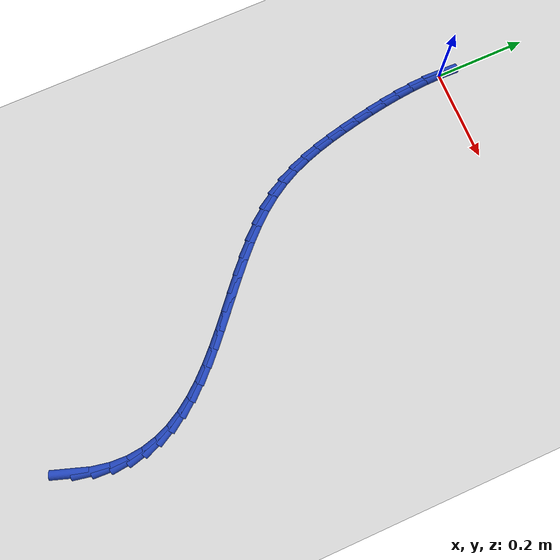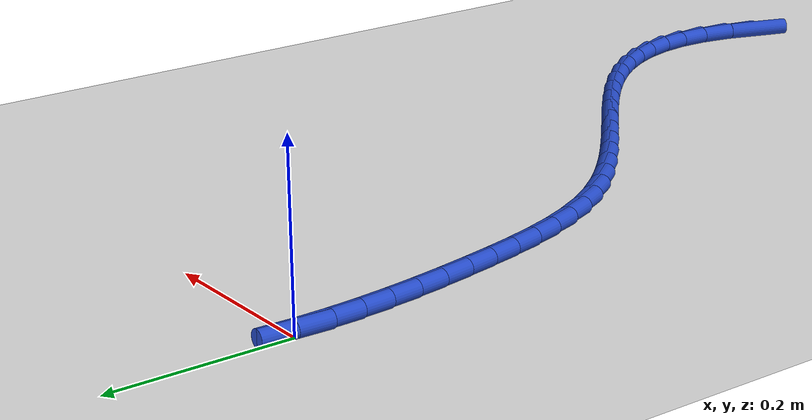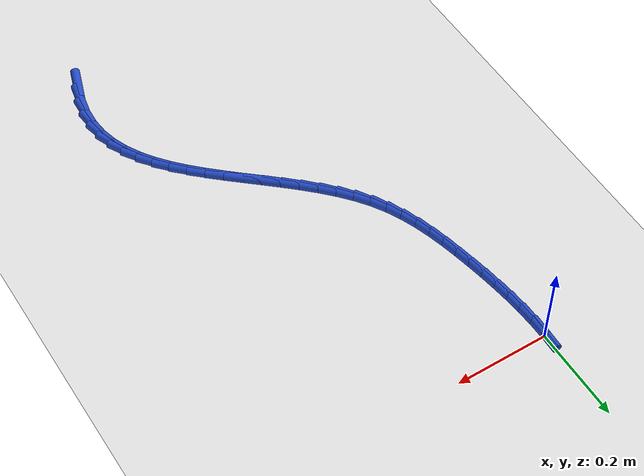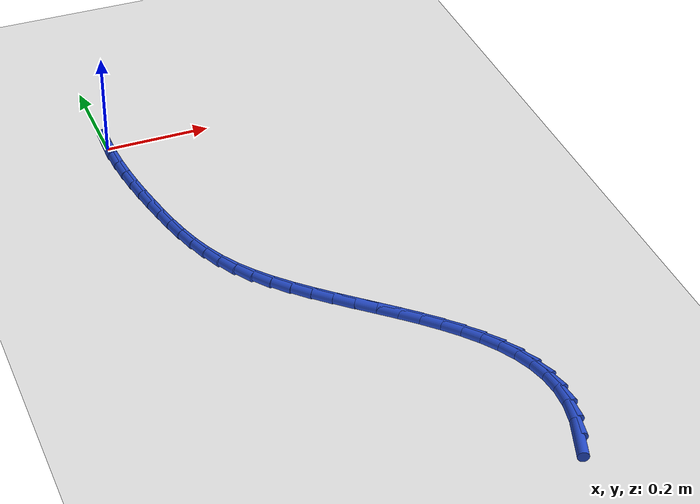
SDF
<sdf version="1.6">
 <world name="default">
  <model name="ground_plane">
   <static>1</static>
   <link name="link">
    <collision name="collision">
     <geometry><plane><normal>0 0 1</normal><size>100 100</size></plane></geometry>
     <surface><friction><ode><mu>100</mu><mu2>50</mu2></ode></friction></surface>
    </collision>
    <visual name="visual">
     <cast_shadows>0</cast_shadows>
     <geometry><plane><normal>0 0 1</normal><size>100 100</size></plane></geometry>
     <material>
      <script><uri>file://media/materials/scripts/gazebo.material</uri><name>Gazebo/WhiteGlow</name></script>
     </material>
    </visual>
   </link>
  </model>
  <model name="line">
   <link name="link_0">
    <pose>8.673617379884035e-19 -6.938893903907228e-18 0.01 0 1.57 1.5414224761235265</pose>
    <collision name="collision">
     <geometry><cylinder><radius>0.01</radius><length>0.08</length></cylinder></geometry>
    </collision>
    <visual name="visual">
     <material>
      <script><name>Gazebo/Blue</name><uri>file://media/materials/scripts/gazebo.material</uri></script>
     </material>
     <geometry><cylinder><radius>0.01</radius><length>0.08</length></cylinder></geometry>
    </visual>
   </link>
   <link name="link_247">
    <pose>0.46742543578225876 -1.0438539088247634 0.01 0 1.57 1.246306538755147</pose>
    <collision name="collision">
     <geometry><cylinder><radius>0.01</radius><length>0.08</length></cylinder></geometry>
    </collision>
    <visual name="visual">
     <material>
      <script><name>Gazebo/Blue</name><uri>file://media/materials/scripts/gazebo.material</uri></script>
     </material>
     <geometry><cylinder><radius>0.01</radius><length>0.08</length></cylinder></geometry>
    </visual>
   </link>
   <link name="link_248">
    <pose>0.4812877516562395 -1.0026435883556466 0.01 0 1.57 1.3754638689260492</pose>
    <collision name="collision">
     <geometry><cylinder><radius>0.01</radius><length>0.08</length></cylinder></geometry>
    </collision>
    <visual name="visual">
     <material>
      <script><name>Gazebo/Blue</name><uri>file://media/materials/scripts/gazebo.material</uri></script>
     </material>
     <geometry><cylinder><radius>0.01</radius><length>0.08</length></cylinder></geometry>
    </visual>
   </link>
   <link name="link_249">
    <pose>0.48901484252835237 -0.9635893270045884 0.01 0 1.57 1.521160636262284</pose>
    <collision name="collision">
     <geometry><cylinder><radius>0.01</radius><length>0.08</length></cylinder></geometry>
    </collision>
    <visual name="visual">
     <material>
      <script><name>Gazebo/Blue</name><uri>file://media/materials/scripts/gazebo.material</uri></script>
     </material>
     <geometry><cylinder><radius>0.01</radius><length>0.08</length></cylinder></geometry>
    </visual>
   </link>
   <link name="link_250">
    <pose>0.49084850989254913 -0.9266771529762206 0.01 0 1.57 -1.4693393847324987</pose>
    <collision name="collision">
     <geometry><cylinder><radius>0.01</radius><length>0.08</length></cylinder></geometry>
    </collision>
    <visual name="visual">
     <material>
      <script><name>Gazebo/Blue</name><uri>file://media/materials/scripts/gazebo.material</uri></script>
     </material>
     <geometry><cylinder><radius>0.01</radius><length>0.08</length></cylinder></geometry>
    </visual>
   </link>
   <link name="link_251">
    <pose>0.48728944913462763 -0.8917180801549183 0.01 0 1.57 -1.3215026564036403</pose>
    <collision name="collision">
     <geometry><cylinder><radius>0.01</radius><length>0.08</length></cylinder></geometry>
    </collision>
    <visual name="visual">
     <material>
      <script><name>Gazebo/Blue</name><uri>file://media/materials/scripts/gazebo.material</uri></script>
     </material>
     <geometry><cylinder><radius>0.01</radius><length>0.08</length></cylinder></geometry>
    </visual>
   </link>
   <link name="link_252">
    <pose>0.4788383556403855 -0.8585231224250552 0.01 0 1.57 -1.184998479204705</pose>
    <collision name="collision">
     <geometry><cylinder><radius>0.01</radius><length>0.08</length></cylinder></geometry>
    </collision>
    <visual name="visual">
     <material>
      <script><name>Gazebo/Blue</name><uri>file://media/materials/scripts/gazebo.material</uri></script>
     </material>
     <geometry><cylinder><radius>0.01</radius><length>0.08</length></cylinder></geometry>
    </visual>
   </link>
   <link name="link_253">
    <pose>0.4659959247956211 -0.826903293671009 0.01 0 1.57 -1.0653021624007954</pose>
    <collision name="collision">
     <geometry><cylinder><radius>0.01</radius><length>0.08</length></cylinder></geometry>
    </collision>
    <visual name="visual">
     <material>
      <script><name>Gazebo/Blue</name><uri>file://media/materials/scripts/gazebo.material</uri></script>
     </material>
     <geometry><cylinder><radius>0.01</radius><length>0.08</length></cylinder></geometry>
    </visual>
   </link>
   <link name="link_254">
    <pose>0.4492628519861321 -0.7966696077771533 0.01 0 1.57 -0.9647674197685904</pose>
    <collision name="collision">
     <geometry><cylinder><radius>0.01</radius><length>0.08</length></cylinder></geometry>
    </collision>
    <visual name="visual">
     <material>
      <script><name>Gazebo/Blue</name><uri>file://media/materials/scripts/gazebo.material</uri></script>
     </material>
     <geometry><cylinder><radius>0.01</radius><length>0.08</length></cylinder></geometry>
    </visual>
   </link>
   <link name="link_255">
    <pose>0.42913983259771626 -0.7676330786278633 0.01 0 1.57 -0.8833599655549254</pose>
    <collision name="collision">
     <geometry><cylinder><radius>0.01</radius><length>0.08</length></cylinder></geometry>
    </collision>
    <visual name="visual">
     <material>
      <script><name>Gazebo/Blue</name><uri>file://media/materials/scripts/gazebo.material</uri></script>
     </material>
     <geometry><cylinder><radius>0.01</radius><length>0.08</length></cylinder></geometry>
    </visual>
   </link>
   <link name="link_256">
    <pose>0.40612756201617134 -0.7396047201075139 0.01 0 1.57 -0.8197573333664852</pose>
    <collision name="collision">
     <geometry><cylinder><radius>0.01</radius><length>0.08</length></cylinder></geometry>
    </collision>
    <visual name="visual">
     <material>
      <script><name>Gazebo/Blue</name><uri>file://media/materials/scripts/gazebo.material</uri></script>
     </material>
     <geometry><cylinder><radius>0.01</radius><length>0.08</length></cylinder></geometry>
    </visual>
   </link>
   <link name="link_257">
    <pose>0.38072673562729537 -0.7123955461004802 0.01 0 1.57 -0.7722238374869395</pose>
    <collision name="collision">
     <geometry><cylinder><radius>0.01</radius><length>0.08</length></cylinder></geometry>
    </collision>
    <visual name="visual">
     <material>
      <script><name>Gazebo/Blue</name><uri>file://media/materials/scripts/gazebo.material</uri></script>
     </material>
     <geometry><cylinder><radius>0.01</radius><length>0.08</length></cylinder></geometry>
    </visual>
   </link>
   <link name="link_258">
    <pose>0.3534380488168862 -0.6858165704911372 0.01 0 1.57 -0.73912723410351</pose>
    <collision name="collision">
     <geometry><cylinder><radius>0.01</radius><length>0.08</length></cylinder></geometry>
    </collision>
    <visual name="visual">
     <material>
      <script><name>Gazebo/Blue</name><uri>file://media/materials/scripts/gazebo.material</uri></script>
     </material>
     <geometry><cylinder><radius>0.01</radius><length>0.08</length></cylinder></geometry>
    </visual>
   </link>
   <link name="link_259">
    <pose>0.3247621969707415 -0.6596788071638598 0.01 0 1.57 -0.7191844352297573</pose>
    <collision name="collision">
     <geometry><cylinder><radius>0.01</radius><length>0.08</length></cylinder></geometry>
    </collision>
    <visual name="visual">
     <material>
      <script><name>Gazebo/Blue</name><uri>file://media/materials/scripts/gazebo.material</uri></script>
     </material>
     <geometry><cylinder><radius>0.01</radius><length>0.08</length></cylinder></geometry>
    </visual>
   </link>
   <link name="link_260">
    <pose>0.29519987547465915 -0.6337932700030233 0.01 0 1.57 -0.7115543814936711</pose>
    <collision name="collision">
     <geometry><cylinder><radius>0.01</radius><length>0.08</length></cylinder></geometry>
    </collision>
    <visual name="visual">
     <material>
      <script><name>Gazebo/Blue</name><uri>file://media/materials/scripts/gazebo.material</uri></script>
     </material>
     <geometry><cylinder><radius>0.01</radius><length>0.08</length></cylinder></geometry>
    </visual>
   </link>
   <link name="link_261">
    <pose>0.2652517797144361 -0.6079709728930018 0.01 0 1.57 -0.7158610051906212</pose>
    <collision name="collision">
     <geometry><cylinder><radius>0.01</radius><length>0.08</length></cylinder></geometry>
    </collision>
    <visual name="visual">
     <material>
      <script><name>Gazebo/Blue</name><uri>file://media/materials/scripts/gazebo.material</uri></script>
     </material>
     <geometry><cylinder><radius>0.01</radius><length>0.08</length></cylinder></geometry>
    </visual>
   </link>
   <link name="link_262">
    <pose>0.23541860507587206 -0.582022929718172 0.01 0 1.57 -0.7321902309447031</pose>
    <collision name="collision">
     <geometry><cylinder><radius>0.01</radius><length>0.08</length></cylinder></geometry>
    </collision>
    <visual name="visual">
     <material>
      <script><name>Gazebo/Blue</name><uri>file://media/materials/scripts/gazebo.material</uri></script>
     </material>
     <geometry><cylinder><radius>0.01</radius><length>0.08</length></cylinder></geometry>
    </visual>
   </link>
   <link name="link_263">
    <pose>0.2062010469447639 -0.555760154362908 0.01 0 1.57 -0.761076232421839</pose>
    <collision name="collision">
     <geometry><cylinder><radius>0.01</radius><length>0.08</length></cylinder></geometry>
    </collision>
    <visual name="visual">
     <material>
      <script><name>Gazebo/Blue</name><uri>file://media/materials/scripts/gazebo.material</uri></script>
     </material>
     <geometry><cylinder><radius>0.01</radius><length>0.08</length></cylinder></geometry>
    </visual>
   </link>
   <link name="link_264">
    <pose>0.17809980070690956 -0.528993660711585 0.01 0 1.57 -0.8034699255778983</pose>
    <collision name="collision">
     <geometry><cylinder><radius>0.01</radius><length>0.08</length></cylinder></geometry>
    </collision>
    <visual name="visual">
     <material>
      <script><name>Gazebo/Blue</name><uri>file://media/materials/scripts/gazebo.material</uri></script>
     </material>
     <geometry><cylinder><radius>0.01</radius><length>0.08</length></cylinder></geometry>
    </visual>
   </link>
   <link name="link_265">
    <pose>0.15161556174810678 -0.5015344626485779 0.01 0 1.57 -0.8606597699515807</pose>
    <collision name="collision">
     <geometry><cylinder><radius>0.01</radius><length>0.08</length></cylinder></geometry>
    </collision>
    <visual name="visual">
     <material>
      <script><name>Gazebo/Blue</name><uri>file://media/materials/scripts/gazebo.material</uri></script>
     </material>
     <geometry><cylinder><radius>0.01</radius><length>0.08</length></cylinder></geometry>
    </visual>
   </link>
   <link name="link_266">
    <pose>0.12724902545415342 -0.4731935740582617 0.01 0 1.57 -0.9340868361285325</pose>
    <collision name="collision">
     <geometry><cylinder><radius>0.01</radius><length>0.08</length></cylinder></geometry>
    </collision>
    <visual name="visual">
     <material>
      <script><name>Gazebo/Blue</name><uri>file://media/materials/scripts/gazebo.material</uri></script>
     </material>
     <geometry><cylinder><radius>0.01</radius><length>0.08</length></cylinder></geometry>
    </visual>
   </link>
   <link name="link_267">
    <pose>0.10550088721084737 -0.4437820088250116 0.01 0 1.57 -1.023574112680775</pose>
    <collision name="collision">
     <geometry><cylinder><radius>0.01</radius><length>0.08</length></cylinder></geometry>
    </collision>
    <visual name="visual">
     <material>
      <script><name>Gazebo/Blue</name><uri>file://media/materials/scripts/gazebo.material</uri></script>
     </material>
     <geometry><cylinder><radius>0.01</radius><length>0.08</length></cylinder></geometry>
    </visual>
   </link>
   <link name="link_268">
    <pose>0.08682488035708132 -0.4131299146290833 0.01 0 1.57 -1.1131345168551707</pose>
    <collision name="collision">
     <geometry><cylinder><radius>0.01</radius><length>0.08</length></cylinder></geometry>
    </collision>
    <visual name="visual">
     <material>
      <script><name>Gazebo/Blue</name><uri>file://media/materials/scripts/gazebo.material</uri></script>
     </material>
     <geometry><cylinder><radius>0.01</radius><length>0.08</length></cylinder></geometry>
    </visual>
   </link>
   <link name="link_269">
    <pose>0.07114011510754892 -0.3812852612093017 0.01 0 1.57 -1.190980627460567</pose>
    <collision name="collision">
     <geometry><cylinder><radius>0.01</radius><length>0.08</length></cylinder></geometry>
    </collision>
    <visual name="visual">
     <material>
      <script><name>Gazebo/Blue</name><uri>file://media/materials/scripts/gazebo.material</uri></script>
     </material>
     <geometry><cylinder><radius>0.01</radius><length>0.08</length></cylinder></geometry>
    </visual>
   </link>
   <link name="link_270">
    <pose>0.05802607940763094 -0.3484343909608341 0.01 0 1.57 -1.2558400286779636</pose>
    <collision name="collision">
     <geometry><cylinder><radius>0.01</radius><length>0.08</length></cylinder></geometry>
    </collision>
    <visual name="visual">
     <material>
      <script><name>Gazebo/Blue</name><uri>file://media/materials/scripts/gazebo.material</uri></script>
     </material>
     <geometry><cylinder><radius>0.01</radius><length>0.08</length></cylinder></geometry>
    </visual>
   </link>
   <link name="link_271">
    <pose>0.04705683407570144 -0.31476585745888264 0.01 0 1.57 -1.3073554379835</pose>
    <collision name="collision">
     <geometry><cylinder><radius>0.01</radius><length>0.08</length></cylinder></geometry>
    </collision>
    <visual name="visual">
     <material>
      <script><name>Gazebo/Blue</name><uri>file://media/materials/scripts/gazebo.material</uri></script>
     </material>
     <geometry><cylinder><radius>0.01</radius><length>0.08</length></cylinder></geometry>
    </visual>
   </link>
   <link name="link_272">
    <pose>0.03780643993013326 -0.2804682142786464 0.01 0 1.57 -1.3456113153803728</pose>
    <collision name="collision">
     <geometry><cylinder><radius>0.01</radius><length>0.08</length></cylinder></geometry>
    </collision>
    <visual name="visual">
     <material>
      <script><name>Gazebo/Blue</name><uri>file://media/materials/scripts/gazebo.material</uri></script>
     </material>
     <geometry><cylinder><radius>0.01</radius><length>0.08</length></cylinder></geometry>
    </visual>
   </link>
   <link name="link_273">
    <pose>0.0298489577892997 -0.2457300149953257 0.01 0 1.57 -1.370970351376839</pose>
    <collision name="collision">
     <geometry><cylinder><radius>0.01</radius><length>0.08</length></cylinder></geometry>
    </collision>
    <visual name="visual">
     <material>
      <script><name>Gazebo/Blue</name><uri>file://media/materials/scripts/gazebo.material</uri></script>
     </material>
     <geometry><cylinder><radius>0.01</radius><length>0.08</length></cylinder></geometry>
    </visual>
   </link>
   <link name="link_274">
    <pose>0.022762248326734978 -0.21073890687230806 0.01 0 1.57 -1.3900828915524308</pose>
    <collision name="collision">
     <geometry><cylinder><radius>0.01</radius><length>0.08</length></cylinder></geometry>
    </collision>
    <visual name="visual">
     <material>
      <script><name>Gazebo/Blue</name><uri>file://media/materials/scripts/gazebo.material</uri></script>
     </material>
     <geometry><cylinder><radius>0.01</radius><length>0.08</length></cylinder></geometry>
    </visual>
   </link>
   <link name="link_275">
    <pose>0.01634748384168714 -0.17562927462594663 0.01 0 1.57 -1.4129708735084194</pose>
    <collision name="collision">
     <geometry><cylinder><radius>0.01</radius><length>0.08</length></cylinder></geometry>
    </collision>
    <visual name="visual">
     <material>
      <script><name>Gazebo/Blue</name><uri>file://media/materials/scripts/gazebo.material</uri></script>
     </material>
     <geometry><cylinder><radius>0.01</radius><length>0.08</length></cylinder></geometry>
    </visual>
   </link>
   <link name="link_276">
    <pose>0.010749305318717163 -0.14045358150098253 0.01 0 1.57 -1.440621740890164</pose>
    <collision name="collision">
     <geometry><cylinder><radius>0.01</radius><length>0.08</length></cylinder></geometry>
    </collision>
    <visual name="visual">
     <material>
      <script><name>Gazebo/Blue</name><uri>file://media/materials/scripts/gazebo.material</uri></script>
     </material>
     <geometry><cylinder><radius>0.01</radius><length>0.08</length></cylinder></geometry>
    </visual>
   </link>
   <link name="link_277">
    <pose>0.00614159021544426 -0.10525731748666094 0.01 0 1.57 -1.4732045078202158</pose>
    <collision name="collision">
     <geometry><cylinder><radius>0.01</radius><length>0.08</length></cylinder></geometry>
    </collision>
    <visual name="visual">
     <material>
      <script><name>Gazebo/Blue</name><uri>file://media/materials/scripts/gazebo.material</uri></script>
     </material>
     <geometry><cylinder><radius>0.01</radius><length>0.08</length></cylinder></geometry>
    </visual>
   </link>
   <link name="link_278">
    <pose>0.002698215989487635 -0.07008597257222682 0.01 0 1.57 -1.5108937274187435</pose>
    <collision name="collision">
     <geometry><cylinder><radius>0.01</radius><length>0.08</length></cylinder></geometry>
    </collision>
    <visual name="visual">
     <material>
      <script><name>Gazebo/Blue</name><uri>file://media/materials/scripts/gazebo.material</uri></script>
     </material>
     <geometry><cylinder><radius>0.01</radius><length>0.08</length></cylinder></geometry>
    </visual>
   </link>
   <link name="link_279">
    <pose>0.0005930600984664402 -0.034985036746924145 0.01 0 1.57 -1.553846128787153</pose>
    <collision name="collision">
     <geometry><cylinder><radius>0.01</radius><length>0.08</length></cylinder></geometry>
    </collision>
    <visual name="visual">
     <material>
      <script><name>Gazebo/Blue</name><uri>file://media/materials/scripts/gazebo.material</uri></script>
     </material>
     <geometry><cylinder><radius>0.01</radius><length>0.08</length></cylinder></geometry>
    </visual>
   </link>
   <link name="link_280">
    <pose>1.5612511283791264e-17 -1.1102230246251565e-16 0.01 0 1.57 1.5394224010943671</pose>
    <collision name="collision">
     <geometry><cylinder><radius>0.01</radius><length>0.08</length></cylinder></geometry>
    </collision>
    <visual name="visual">
     <material>
      <script><name>Gazebo/Blue</name><uri>file://media/materials/scripts/gazebo.material</uri></script>
     </material>
     <geometry><cylinder><radius>0.01</radius><length>0.08</length></cylinder></geometry>
    </visual>
   </link>
  </model>
 </world>
</sdf>
